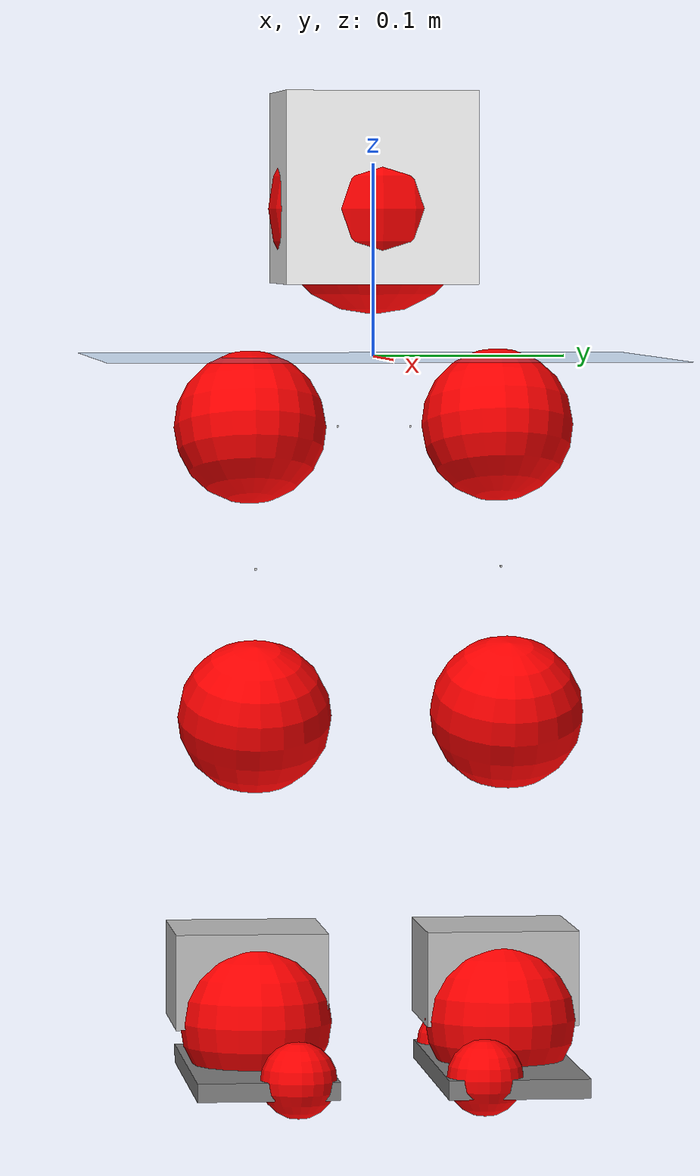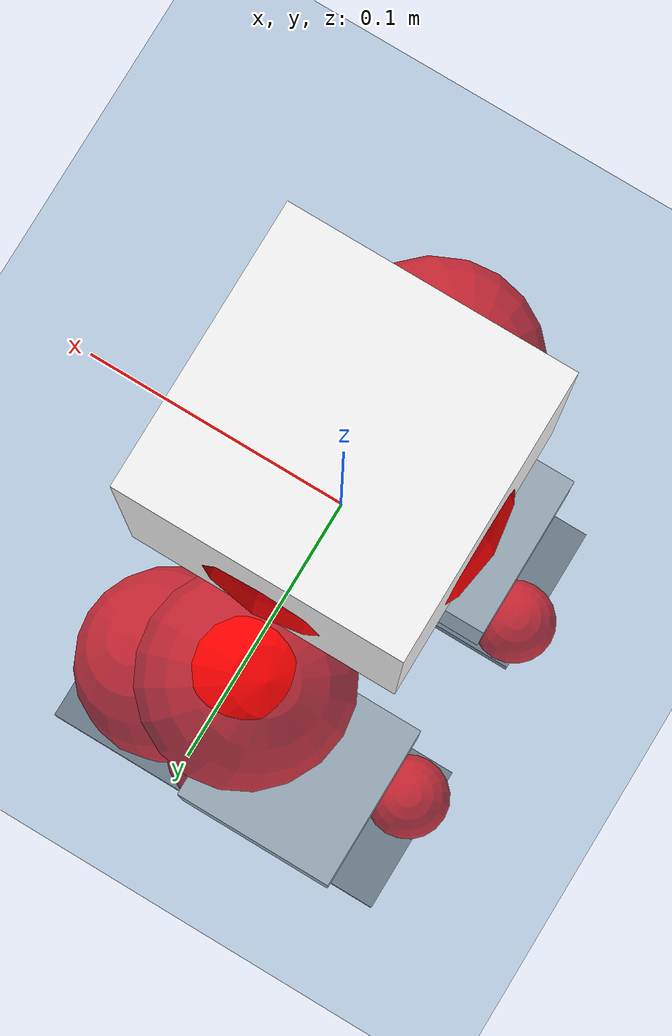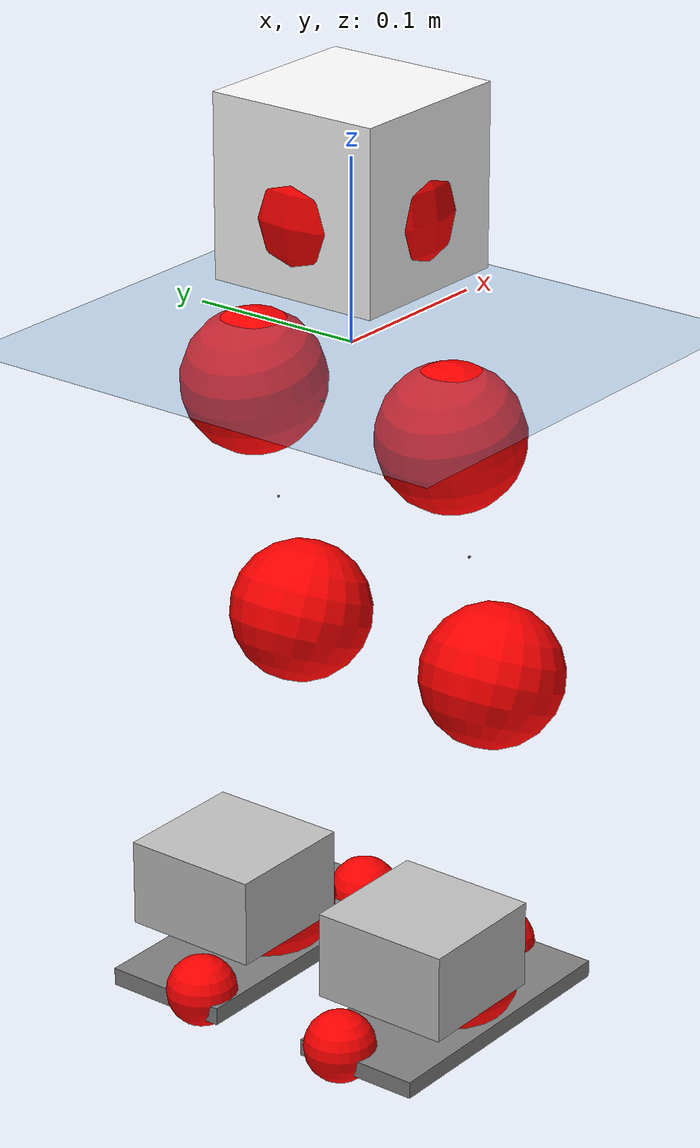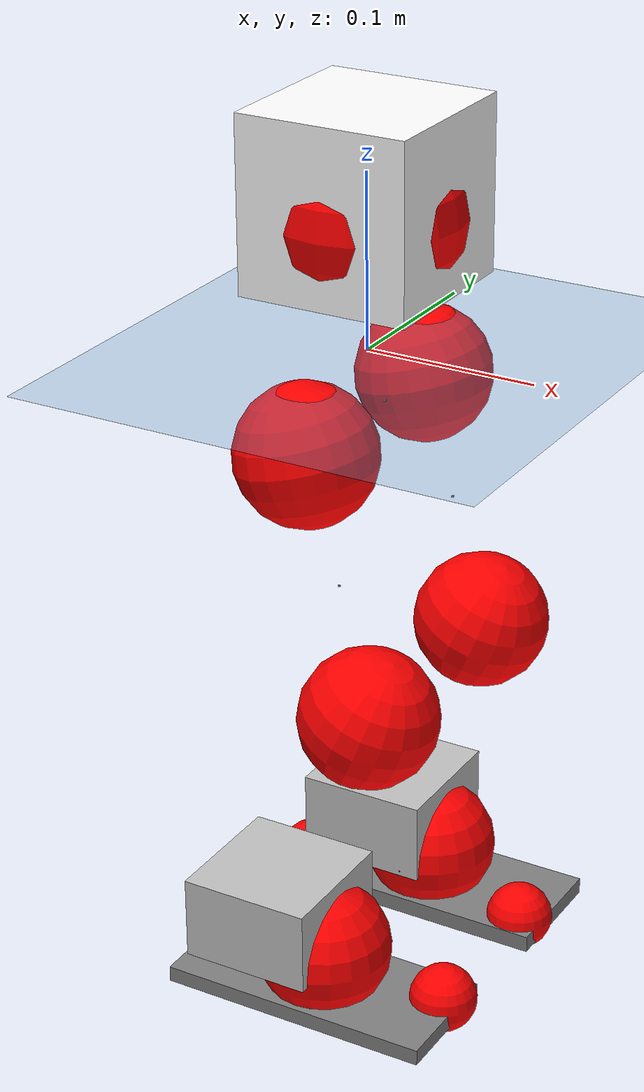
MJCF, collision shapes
<mujoco model="pi_12dof_release_v1">
  <compiler angle="radian" assetdir="assets" balanceinertia="true" inertiafromgeom="false"/>

  <option timestep="0.005" density="1.2" viscosity="2e-05"/>

  <size nkey="1"/>

  <visual>
    <quality shadowsize="8192"/>
    <map shadowclip="0.5"/>
  </visual>

  <default>
    <default class="/">
      <joint armature="0.01" damping="0.01" frictionloss="0.01"/>
      <geom contype="0" conaffinity="0" group="1" solref="-1000 -80"/>
      <site size="0.01 0.005 0.005" group="5"/>
      <general forcelimited="true" biastype="affine" gainprm="20" biasprm="0 -20 -0.5"/>
      <default class="foot">
        <geom size="0.0845 0.036 0.005" type="box" condim="6" group="4" priority="1" friction="0.9 0.2 0.2" solimp="0.015 1 0.005"/>
      </default>
      <default class="reward_collision_sphere">
        <geom group="5" rgba="1 0 0 1"/>
      </default>
    </default>
  </default>

  <asset>
    <texture type="skybox" colorspace="auto" name="//unnamed_texture_0" builtin="gradient" rgb1="0.95 0.95 0.95" rgb2="0.95 0.95 0.95" width="100" height="600"/>
    <texture type="2d" colorspace="auto" name="texplane" builtin="checker" rgb1="0.345 0.575 0.748" rgb2="0.345 0.575 0.748" markrgb="1 1 1" width="512" height="512"/>
    <material name="MatPlane" class="/" texture="texplane" texuniform="true" texrepeat="2 2" specular="0.9"/>
    <mesh name="baselink_1" class="/" file="baselink_1.STL"/>
    <mesh name="r_hip_pitch_link" class="/" file="r_hip_pitch_link.STL"/>
    <mesh name="r_hip_roll_link" class="/" file="r_hip_roll_link.STL"/>
    <mesh name="r_thigh_link" class="/" file="r_thigh_link.STL"/>
    <mesh name="r_calf_link" class="/" file="r_calf_link.STL"/>
    <mesh name="r_ankle_pitch_link" class="/" file="r_ankle_pitch_link.STL"/>
    <mesh name="r_ankle_roll_link" class="/" file="r_ankle_roll_link.STL"/>
    <mesh name="l_hip_pitch_link" class="/" file="l_hip_pitch_link.STL"/>
    <mesh name="l_hip_roll_link" class="/" file="l_hip_roll_link.STL"/>
    <mesh name="l_thigh_link" class="/" file="l_thigh_link.STL"/>
    <mesh name="l_calf_link" class="/" file="l_calf_link.STL"/>
    <mesh name="l_ankle_pitch_link" class="/" file="l_ankle_pitch_link.STL"/>
    <mesh name="l_ankle_roll_link" class="/" file="l_ankle_roll_link.STL"/>
  </asset>

  <worldbody>
    <geom name="floor" class="/" size="100 100 0.125" type="plane" group="0" material="MatPlane"/>
    <light name="toplight_shadow" class="/" pos="0 0 5" dir="0.0990148 0.0990148 -0.990148" type="directional" ambient="0.04 0.04 0.04" diffuse="0.55 0.55 0.55" specular="0.12 0.12 0.12"/>
    <light name="toplight_fill" class="/" pos="0 0 5" dir="0.0990148 0.0990148 -0.990148" type="directional" castshadow="false" ambient="0.04 0.04 0.04" diffuse="0.3 0.3 0.3" specular="0.08 0.08 0.08"/>
    <body name="trunk" pos="2.95259e-05 -8.15356e-05 -0.000448879" quat="1 4.30304e-06 3.92416e-05 -3.29691e-06">
      <inertial pos="0.00324666 -0.0011723 0.0443881" quat="0.695164 0.00982641 0.00930941 0.718724" mass="2.1726" diaginertia="0.014261 0.00317368 0.00674541"/>
      <joint name="//unnamed_joint_0" type="free"/>
      <geom name="//unnamed_geom_1" class="/" type="mesh" density="0" rgba="1 1 1 1" mesh="baselink_1"/>
      <geom name="//unnamed_geom_2" class="/" size="0.0497911 0.0497911 0.0497911" pos="0 0 0.0879958" type="box" rgba="1 1 1 1"/>
      <geom name="//unnamed_geom_3" class="reward_collision_sphere" size="0.0547702" pos="0 0 0.0769964"/>
      <site name="imu" class="/" pos="0.0021888 -0.00422711 0.00332226" size="0.00995821"/>
      <camera name="track" class="/" pos="0 -1.62238 0" quat="0.707107 0.707107 0 0" mode="trackcom"/>
      <camera name="ego_camera" class="/" pos="0.0807244 0 0.197991" quat="-0.5 -0.5 0.5 0.5"/>
      <body name="r_hip_pitch_link" pos="-0.000551812 -0.0185221 -0.0363179" quat="0.992199 -4.55708e-05 -0.124666 -4.1431e-05">
        <inertial pos="0.00151692 -0.0451799 8.00373e-05" quat="-0.0205487 0.70562 -0.0290847 0.707695" mass="0.369064" diaginertia="0.000156865 3.46487e-05 0.000135077"/>
        <joint name="r_hip_pitch_joint" class="/" pos="0 0 0" axis="0.000531549 -1 0.000536094" range="-1.73806 1.24151" armature="0.00995989" damping="0.0119386" frictionloss="0.0101093"/>
        <geom name="//unnamed_geom_4" class="/" type="mesh" density="0" rgba="0.75294 0.75294 0.75294 1" mesh="r_hip_pitch_link"/>
        <geom name="//unnamed_geom_5" class="/" size="0.000497911 0.000497911 0.000497911" type="box" rgba="0.75294 0.75294 0.75294 1"/>
        <body name="r_hip_roll_link" pos="5.1495e-05 -0.0458389 -0.000187896" quat="1 -5.44743e-05 9.29411e-06 0.000120459">
          <inertial pos="-0.00167836 -8.30589e-06 -0.068061" quat="0.705861 -0.0789343 -0.0835722 0.69896" mass="0.387451" diaginertia="0.000487438 9.80201e-05 0.000209073"/>
          <joint name="r_hip_roll_joint" class="/" pos="0 0 0" axis="-0.999993 0.00332455 -0.0015583" stiffness="0.000434346" range="-0.118552 0.499838" armature="0.00961321" damping="0.00902644" frictionloss="0.00952411"/>
          <geom name="//unnamed_geom_6" class="/" type="mesh" density="0" rgba="0.75294 0.75294 0.75294 1" mesh="r_hip_roll_link"/>
          <geom name="//unnamed_geom_7" class="/" size="0.000497911 0.000497911 0.000497911" type="box" rgba="0.75294 0.75294 0.75294 1"/>
          <geom name="//unnamed_geom_8" class="reward_collision_sphere" size="0.0398328"/>
          <body name="r_thigh_link" pos="2.85005e-06 0.00120078 -0.0756614" quat="1 -1.30772e-05 6.21243e-05 -7.22113e-05">
            <inertial pos="-0.000303422 0.000588556 -0.0525001" quat="0.736672 0.67625 -0.000239546 0.000379393" mass="0.111504" diaginertia="0.000180669 3.31928e-05 9.33812e-05"/>
            <joint name="r_thigh_joint" class="/" pos="0 0 0" axis="-0.00102146 -0.000626978 -0.999999" range="-0.288484 0.584238" armature="0.00966425" damping="0" frictionloss="0.00978812"/>
            <geom name="//unnamed_geom_9" class="/" type="mesh" density="0" rgba="0.75294 0.75294 0.75294 1" mesh="r_thigh_link"/>
            <geom name="//unnamed_geom_10" class="/" size="0.000497911 0.000497911 0.000497911" type="box" rgba="0.75294 0.75294 0.75294 1"/>
            <body name="r_calf_link" pos="0.000185611 -0.00215069 -0.0774114" quat="0.947639 -0.000321754 0.319344 0.00010467">
              <inertial pos="0.000187052 -0.000793416 -0.0770281" quat="0.999975 -0.00504226 -0.0016896 0.00463301" mass="0.806399" diaginertia="0.00509489 0.00122292 0.000280691"/>
              <joint name="r_calf_joint" class="/" pos="0 0 0" axis="-0.000381783 -1 -0.000192527" range="-1.65027 0.632784" armature="0.00993398" damping="0.00873509" frictionloss="0.0098318"/>
              <geom name="//unnamed_geom_11" class="/" type="mesh" density="0" rgba="0.75294 0.75294 0.75294 1" mesh="r_calf_link"/>
              <geom name="//unnamed_geom_12" class="/" size="0.000497911 0.000497911 0.000497911" type="box" rgba="0.75294 0.75294 0.75294 1"/>
              <geom name="//unnamed_geom_13" class="reward_collision_sphere" size="0.0398328"/>
              <body name="r_ankle_pitch_link" pos="-0.000293003 0.000573167 -0.152453" quat="0.980026 3.71407e-05 -0.198872 6.65718e-05">
                <inertial pos="0.0058238 0.00290515 -0.000331763" quat="0.00341261 0.706174 -0.00268672 0.708025" mass="0.172042" diaginertia="0.000443476 7.83822e-05 0.00019172"/>
                <joint name="r_ankle_pitch_joint" class="/" pos="0 0 0" axis="0.00478075 -0.999983 -0.00323917" range="-1.28227 0.500354" armature="0.0100162" damping="0.0126872" frictionloss="0.0100952"/>
                <geom name="//unnamed_geom_14" class="/" type="mesh" density="0" rgba="0.75294 0.75294 0.75294 1" mesh="r_ankle_pitch_link"/>
                <geom name="//unnamed_geom_15" class="/" size="0.038837 0.0398328 0.0248955" type="box" rgba="0.75294 0.75294 0.75294 1"/>
                <body name="r_ankle_roll_link" pos="0.0814978 0.00270062 -0.000110238" quat="1 0.000210243 -1.75118e-05 1.16521e-05">
                  <inertial pos="-0.0260178 0.000185688 -0.01672" quat="0.561719 0.432367 0.43298 0.55683" mass="0.510384" diaginertia="0.00164069 0.000361071 0.000461132"/>
                  <joint name="r_ankle_roll_joint" class="/" pos="0 0 0" axis="-1 0.000752853 -0.000474485" range="-0.166296 0.133862" armature="0.0101027" damping="0.0121273" frictionloss="0.00989572"/>
                  <geom name="//unnamed_geom_16" class="/" type="mesh" density="0" rgba="0.75294 0.75294 0.75294 1" mesh="r_ankle_roll_link"/>
                  <geom name="//unnamed_geom_17" class="/" type="mesh" rgba="0.75294 0.75294 0.75294 1" mesh="r_ankle_roll_link"/>
                  <geom name="right_foot" class="foot" size="0.0824809 0.0366552 0.00478942" pos="-0.0548926 0 -0.0483977"/>
                  <geom name="//unnamed_geom_19" class="reward_collision_sphere" size="0.0398328" pos="-0.0538162 0 -0.021999"/>
                  <geom name="//unnamed_geom_20" class="reward_collision_sphere" size="0.0199164" pos="0.0161449 0.0162238 -0.0439979"/>
                  <geom name="//unnamed_geom_21" class="reward_collision_sphere" size="0.0199164" pos="-0.129159 0.0162238 -0.0439979"/>
                  <site name="right_foot" class="foot" pos="-0.0548926 0 -0.0483977" size="0.00995821"/>
                </body>
              </body>
            </body>
          </body>
        </body>
      </body>
      <body name="l_hip_pitch_link" pos="-0.000176733 0.0195047 -0.0363908" quat="0.992197 0.000153225 -0.124678 5.50818e-05">
        <inertial pos="0.00133417 0.0435742 -0.00107639" quat="-0.0386976 0.705012 0.0291254 0.70754" mass="0.389423" diaginertia="0.000188747 3.7197e-05 0.000165298"/>
        <joint name="l_hip_pitch_joint" class="/" pos="0 0 0" axis="0.000372802 1 0.000673657" range="-1.25442 1.76554" armature="0.00992672" damping="0.00662919" frictionloss="0.0095905"/>
        <geom name="//unnamed_geom_22" class="/" type="mesh" density="0" rgba="0.75294 0.75294 0.75294 1" mesh="l_hip_pitch_link"/>
        <geom name="//unnamed_geom_23" class="/" size="0.000497911 0.000497911 0.000497911" type="box" rgba="0.75294 0.75294 0.75294 1"/>
        <body name="l_hip_roll_link" pos="-7.0982e-05 0.045683 0.000851788" quat="1 6.76836e-05 -0.000388546 -0.000150077">
          <inertial pos="-0.000417346 0.000653212 -0.0681052" quat="0.699289 -0.0754205 -0.0779609 0.706562" mass="0.388976" diaginertia="0.00048723 9.88029e-05 0.000206968"/>
          <joint name="l_hip_roll_joint" class="/" pos="0 0 0" axis="-0.999999 -0.00102053 0.000437105" range="-0.499938 0.134388" armature="0.0103012" damping="0.00049559" frictionloss="0.00997367"/>
          <geom name="//unnamed_geom_24" class="/" type="mesh" density="0" rgba="0.75294 0.75294 0.75294 1" mesh="l_hip_roll_link"/>
          <geom name="//unnamed_geom_25" class="/" size="0.000497911 0.000497911 0.000497911" type="box" rgba="0.75294 0.75294 0.75294 1"/>
          <geom name="//unnamed_geom_26" class="reward_collision_sphere" size="0.0398328"/>
          <body name="l_thigh_link" pos="0.000724778 -0.000286249 -0.0756984" quat="1 -0.000332917 7.00015e-05 -0.000162729">
            <inertial pos="9.3701e-05 -0.00228188 -0.0531709" quat="0.675202 0.737633 -7.67888e-05 0.000312192" mass="0.112129" diaginertia="0.000182597 3.38871e-05 9.37854e-05"/>
            <joint name="l_thigh_joint" class="/" pos="0 0 0" axis="-0.000576316 -0.000988819 -0.999999" stiffness="0.000425134" range="-0.598412 0.291664" armature="0.00970875" damping="0.00768843" frictionloss="0.0102524"/>
            <geom name="//unnamed_geom_27" class="/" type="mesh" density="0" rgba="0.75294 0.75294 0.75294 1" mesh="l_thigh_link"/>
            <geom name="//unnamed_geom_28" class="/" size="0.000497911 0.000497911 0.000497911" type="box" rgba="0.75294 0.75294 0.75294 1"/>
            <body name="l_calf_link" pos="0.000617561 0.000506241 -0.0770546" quat="0.947597 -3.87124e-06 0.319468 -2.93689e-05">
              <inertial pos="0.0011729 0.00346562 -0.0765096" quat="0.999984 0.00308726 -6.58674e-05 0.00476035" mass="0.799087" diaginertia="0.00512692 0.00123845 0.000279995"/>
              <joint name="l_calf_joint" class="/" pos="0 0 0" axis="-5.16684e-05 0.999984 0.00571286" range="-0.643956 1.65339" armature="0.0101818" damping="0.0123096" frictionloss="0.00951827"/>
              <geom name="//unnamed_geom_29" class="/" type="mesh" density="0" rgba="0.75294 0.75294 0.75294 1" mesh="l_calf_link"/>
              <geom name="//unnamed_geom_30" class="/" size="0.000497911 0.000497911 0.000497911" type="box" rgba="0.75294 0.75294 0.75294 1"/>
              <geom name="//unnamed_geom_31" class="reward_collision_sphere" size="0.0398328"/>
              <body name="l_ankle_pitch_link" pos="0.000367468 0.00107157 -0.153574" quat="0.980079 -6.93151e-05 -0.198607 0.0001559">
                <inertial pos="0.00462452 0.000177748 -0.000279458" quat="-0.00443033 0.70863 0.00532803 0.705546" mass="0.171774" diaginertia="0.000441163 7.75314e-05 0.000193486"/>
                <joint name="l_ankle_pitch_joint" class="/" pos="0 0 0" axis="-1.1863e-05 1 0.000970224" range="-0.48695 1.29556" armature="0.0101716" damping="0" frictionloss="0.0102735"/>
                <geom name="//unnamed_geom_32" class="/" type="mesh" density="0" rgba="0.75294 0.75294 0.75294 1" mesh="l_ankle_pitch_link"/>
                <geom name="//unnamed_geom_33" class="/" size="0.038837 0.0398328 0.0248955" type="box" rgba="0.75294 0.75294 0.75294 1"/>
                <body name="l_ankle_roll_link" pos="0.0806664 -0.000126433 -4.40025e-05" quat="1 -0.000100291 0.000174905 -0.00031759">
                  <inertial pos="-0.0259967 -0.000395222 -0.0161646" quat="0.559943 0.43058 0.434203 0.559046" mass="0.503801" diaginertia="0.00161082 0.00035501 0.00045057"/>
                  <joint name="l_ankle_roll_joint" class="/" pos="0 0 0" axis="-1 -0.000444069 0.000196863" range="-0.149633 0.136594" armature="0.0100156" damping="0.0115763" frictionloss="0.0102699"/>
                  <geom name="//unnamed_geom_34" class="/" type="mesh" density="0" rgba="0.75294 0.75294 0.75294 1" mesh="l_ankle_roll_link"/>
                  <geom name="//unnamed_geom_35" class="/" type="mesh" rgba="0.75294 0.75294 0.75294 1" mesh="l_ankle_roll_link"/>
                  <geom name="left_foot" class="foot" size="0.0864221 0.036527 0.00505239" pos="-0.0548926 0 -0.0483977"/>
                  <geom name="//unnamed_geom_37" class="reward_collision_sphere" size="0.0398328" pos="-0.0538162 0 -0.021999"/>
                  <geom name="//unnamed_geom_38" class="reward_collision_sphere" size="0.0199164" pos="0.0161449 -0.0162238 -0.0439979"/>
                  <geom name="//unnamed_geom_39" class="reward_collision_sphere" size="0.0199164" pos="-0.129159 -0.0162238 -0.0439979"/>
                  <site name="left_foot" class="foot" pos="-0.0548926 0 -0.0483977" size="0.00995821"/>
                </body>
              </body>
            </body>
          </body>
        </body>
      </body>
    </body>
  </worldbody>

  <contact>
    <pair class="/" geom1="floor" geom2="right_foot" name="//unnamed_contact_1"/>
    <pair class="/" geom1="floor" geom2="left_foot" name="//unnamed_contact_0"/>
  </contact>

  <actuator>
    <general name="r_hip_pitch_joint" class="/" joint="r_hip_pitch_joint" forcerange="-20.6999 20.6999" gainprm="19.5806" biasprm="0 -19.5806 -0.5025"/>
    <general name="r_hip_roll_joint" class="/" joint="r_hip_roll_joint" forcerange="-20.4044 20.4044" gainprm="19.5806" biasprm="0 -19.5806 -0.5025"/>
    <general name="r_thigh_joint" class="/" joint="r_thigh_joint" forcerange="-20.9985 20.9985" gainprm="19.5806" biasprm="0 -19.5806 -0.5025"/>
    <general name="r_calf_joint" class="/" joint="r_calf_joint" forcerange="-21.5314 21.5314" gainprm="19.5806" biasprm="0 -19.5806 -0.5025"/>
    <general name="r_ankle_pitch_joint" class="/" joint="r_ankle_pitch_joint" forcerange="-21.2374 21.2374" gainprm="19.5806" biasprm="0 -19.5806 -0.5025"/>
    <general name="r_ankle_roll_joint" class="/" joint="r_ankle_roll_joint" forcerange="-20.3907 20.3907" gainprm="19.5806" biasprm="0 -19.5806 -0.5025"/>
    <general name="l_hip_pitch_joint" class="/" joint="l_hip_pitch_joint" forcerange="-20.8267 20.8267" gainprm="19.5806" biasprm="0 -19.5806 -0.5025"/>
    <general name="l_hip_roll_joint" class="/" joint="l_hip_roll_joint" forcerange="-21.2399 21.2399" gainprm="19.5806" biasprm="0 -19.5806 -0.5025"/>
    <general name="l_thigh_joint" class="/" joint="l_thigh_joint" forcerange="-20.2676 20.2676" gainprm="19.5806" biasprm="0 -19.5806 -0.5025"/>
    <general name="l_calf_joint" class="/" joint="l_calf_joint" forcerange="-20.6831 20.6831" gainprm="19.5806" biasprm="0 -19.5806 -0.5025"/>
    <general name="l_ankle_pitch_joint" class="/" joint="l_ankle_pitch_joint" forcerange="-20.3077 20.3077" gainprm="19.5806" biasprm="0 -19.5806 -0.5025"/>
    <general name="l_ankle_roll_joint" class="/" joint="l_ankle_roll_joint" forcerange="-20.7899 20.7899" gainprm="19.5806" biasprm="0 -19.5806 -0.5025"/>
  </actuator>

  <sensor>
    <gyro site="imu" name="imu_angular_velocity"/>
    <velocimeter site="imu" name="imu_linear_velocity"/>
    <framelinvel objtype="site" objname="left_foot" name="left_foot_global_linear_velocity"/>
    <framelinvel objtype="site" objname="right_foot" name="right_foot_global_linear_velocity"/>
  </sensor>

  <keyframe>
    <key name="home" qpos="0 0 0.291 1 0 0 0 0.4 0 0 -0.8 0.4 0 -0.4 0 0 0.8 -0.4 0"/>
  </keyframe>
</mujoco>
